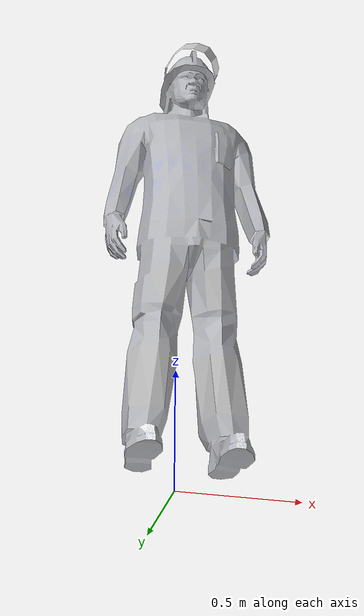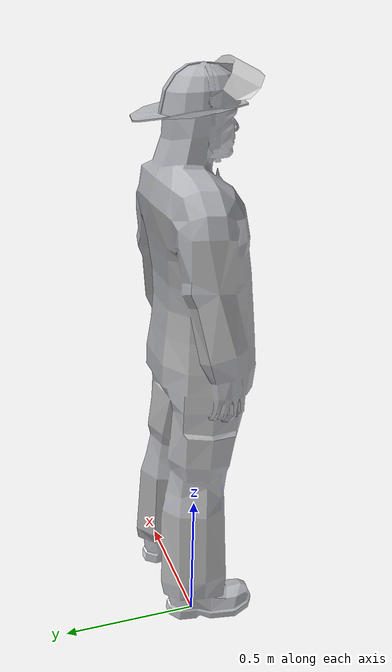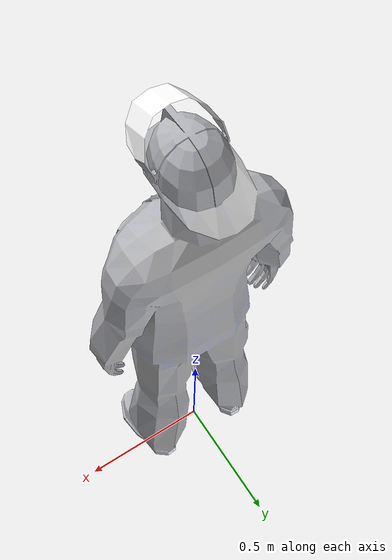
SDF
<?xml version="1.0"?>
<sdf version="1.6">
   <model name="fireman2">
      <static>false</static>
      <link name="fireman2">
	<gravity>1</gravity>

	<pose>0 0 0.1 0 0 0</pose>
	<collision name="collision">
	  <geometry>
	     <mesh>
		<uri>model://fireman2/meshes/model.dae</uri>
	     </mesh>
	  </geometry>
	</collision>
	<visual name="visual">
	  <geometry>
	     <mesh>
		<uri>model://fireman2/meshes/model.dae</uri>
  	     </mesh>
	  </geometry>
	</visual>
      </link>
   </model>
</sdf>
